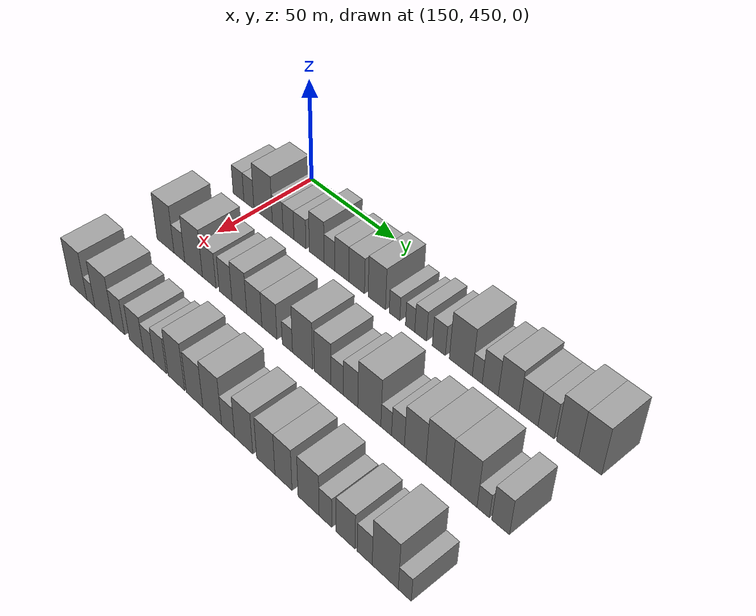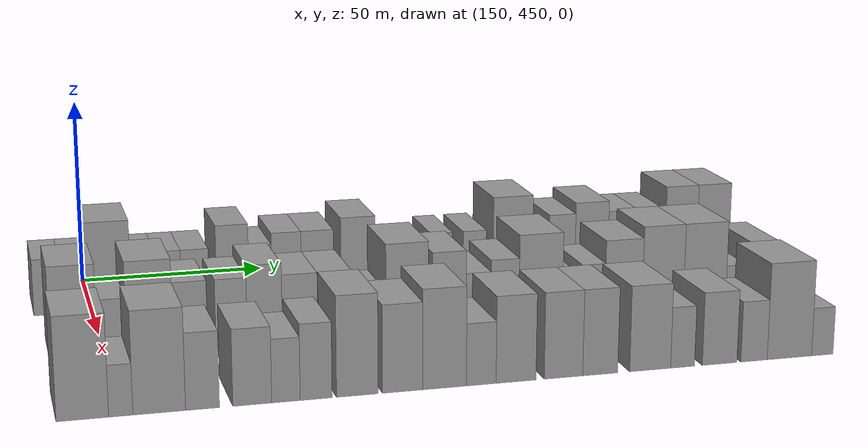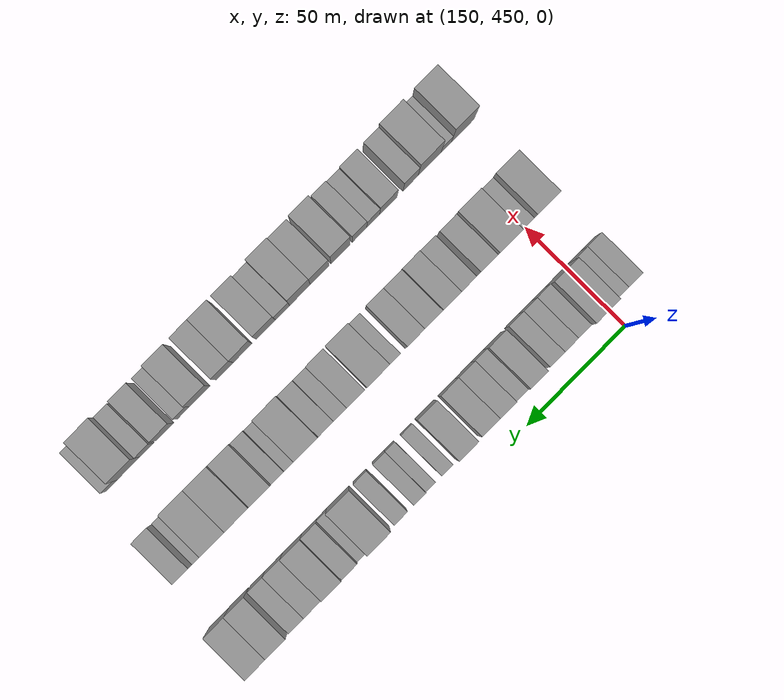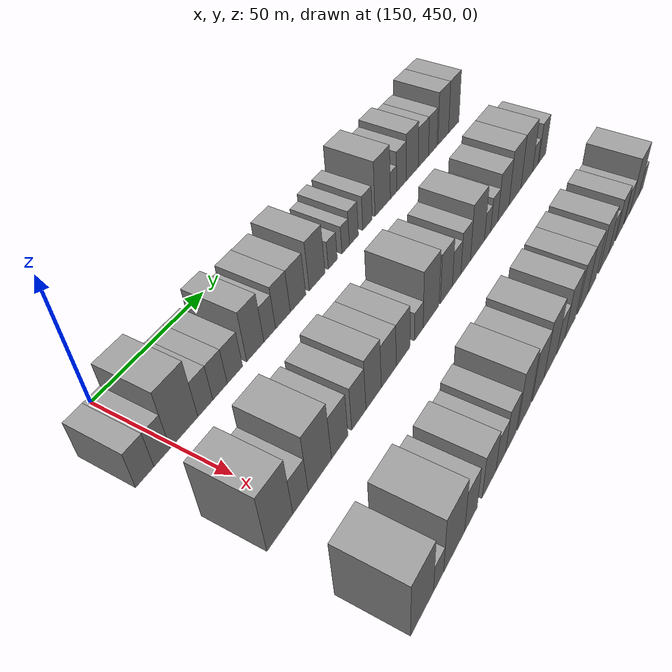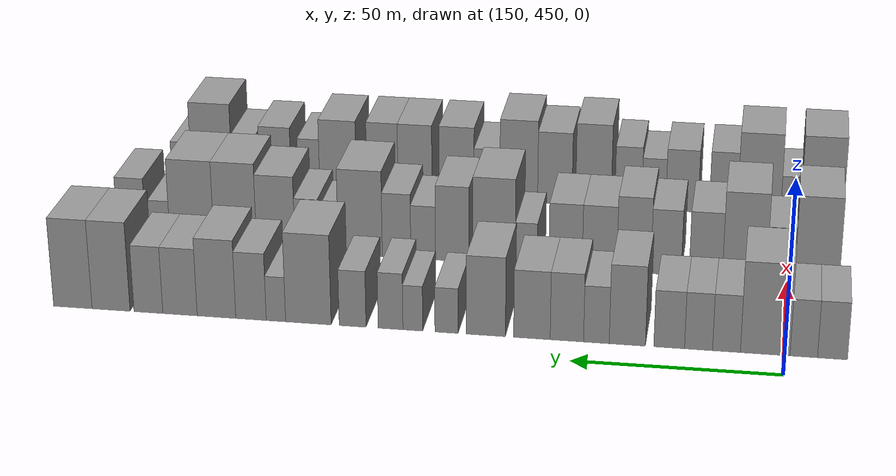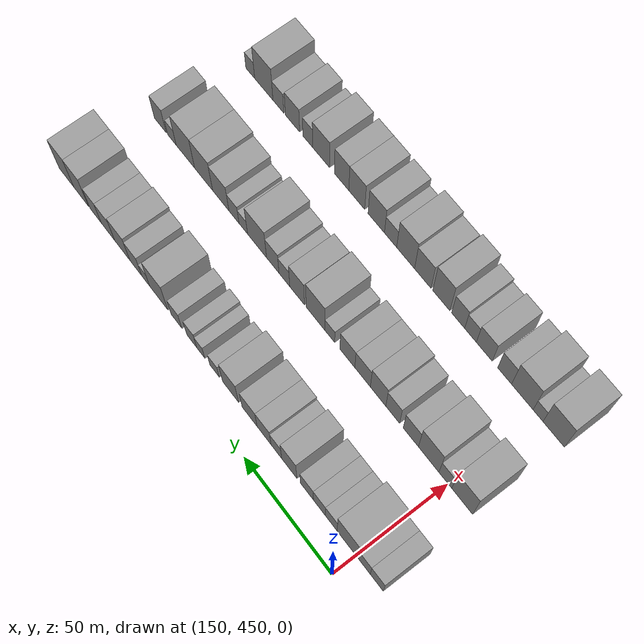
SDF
<sdf version="1.6">
 <world name="default">
  <model name="building_526">
   <static>1</static>
   <pose>170.0000 438.6558 0 0.000000 0.000000 0.000000</pose>
   <link name="link">
    <pose>0 0 7.50 0 0 0</pose>
    <collision name="collision"><geometry><box><size>20.0000 7.0231 15.0000</size></box></geometry></collision>
    <visual name="visual">
     <cast_shadows>0</cast_shadows>
     <geometry><box><size>20.0000 7.0231 15.0000</size></box></geometry>
     <material>
      <script>
       <uri>model://grey_wall/materials/scripts</uri>
       <uri>model://grey_wall/materials/textures</uri>
       <name>vrc/grey_wall</name>
      </script>
     </material>
    </visual>
   </link>
  </model>
  <model name="building_527">
   <static>1</static>
   <pose>170.0000 445.3950 0 0.000000 0.000000 0.000000</pose>
   <link name="link">
    <pose>0 0 7.50 0 0 0</pose>
    <collision name="collision"><geometry><box><size>20.0000 6.4554 15.0000</size></box></geometry></collision>
    <visual name="visual">
     <cast_shadows>0</cast_shadows>
     <geometry><box><size>20.0000 6.4554 15.0000</size></box></geometry>
     <material>
      <script>
       <uri>model://grey_wall/materials/scripts</uri>
       <uri>model://grey_wall/materials/textures</uri>
       <name>vrc/grey_wall</name>
      </script>
     </material>
    </visual>
   </link>
  </model>
  <model name="building_528">
   <static>1</static>
   <pose>170.0000 454.4798 0 0.000000 0.000000 0.000000</pose>
   <link name="link">
    <pose>0 0 12.00 0 0 0</pose>
    <collision name="collision"><geometry><box><size>20.0000 11.7142 24.0000</size></box></geometry></collision>
    <visual name="visual">
     <cast_shadows>0</cast_shadows>
     <geometry><box><size>20.0000 11.7142 24.0000</size></box></geometry>
     <material>
      <script>
       <uri>model://grey_wall/materials/scripts</uri>
       <uri>model://grey_wall/materials/textures</uri>
       <name>vrc/grey_wall</name>
      </script>
     </material>
    </visual>
   </link>
  </model>
  <model name="building_529">
   <static>1</static>
   <pose>170.0000 463.6392 0 0.000000 0.000000 0.000000</pose>
   <link name="link">
    <pose>0 0 7.50 0 0 0</pose>
    <collision name="collision"><geometry><box><size>20.0000 6.6045 15.0000</size></box></geometry></collision>
    <visual name="visual">
     <cast_shadows>0</cast_shadows>
     <geometry><box><size>20.0000 6.6045 15.0000</size></box></geometry>
     <material>
      <script>
       <uri>model://grey_wall/materials/scripts</uri>
       <uri>model://grey_wall/materials/textures</uri>
       <name>vrc/grey_wall</name>
      </script>
     </material>
    </visual>
   </link>
  </model>
  <model name="building_530">
   <static>1</static>
   <pose>170.0000 470.2667 0 0.000000 0.000000 0.000000</pose>
   <link name="link">
    <pose>0 0 7.50 0 0 0</pose>
    <collision name="collision"><geometry><box><size>20.0000 6.6507 15.0000</size></box></geometry></collision>
    <visual name="visual">
     <cast_shadows>0</cast_shadows>
     <geometry><box><size>20.0000 6.6507 15.0000</size></box></geometry>
     <material>
      <script>
       <uri>model://grey_wall/materials/scripts</uri>
       <uri>model://grey_wall/materials/textures</uri>
       <name>vrc/grey_wall</name>
      </script>
     </material>
    </visual>
   </link>
  </model>
  <model name="building_531">
   <static>1</static>
   <pose>170.0000 477.2610 0 0.000000 0.000000 0.000000</pose>
   <link name="link">
    <pose>0 0 7.50 0 0 0</pose>
    <collision name="collision"><geometry><box><size>20.0000 7.3378 15.0000</size></box></geometry></collision>
    <visual name="visual">
     <cast_shadows>0</cast_shadows>
     <geometry><box><size>20.0000 7.3378 15.0000</size></box></geometry>
     <material>
      <script>
       <uri>model://grey_wall/materials/scripts</uri>
       <uri>model://grey_wall/materials/textures</uri>
       <name>vrc/grey_wall</name>
      </script>
     </material>
    </visual>
   </link>
  </model>
  <model name="building_532">
   <static>1</static>
   <pose>170.0000 487.2739 0 0.000000 0.000000 0.000000</pose>
   <link name="link">
    <pose>0 0 10.50 0 0 0</pose>
    <collision name="collision"><geometry><box><size>20.0000 8.6882 21.0000</size></box></geometry></collision>
    <visual name="visual">
     <cast_shadows>0</cast_shadows>
     <geometry><box><size>20.0000 8.6882 21.0000</size></box></geometry>
     <material>
      <script>
       <uri>model://grey_wall/materials/scripts</uri>
       <uri>model://grey_wall/materials/textures</uri>
       <name>vrc/grey_wall</name>
      </script>
     </material>
    </visual>
   </link>
  </model>
  <model name="building_533">
   <static>1</static>
   <pose>170.0000 494.7062 0 0.000000 0.000000 0.000000</pose>
   <link name="link">
    <pose>0 0 7.50 0 0 0</pose>
    <collision name="collision"><geometry><box><size>20.0000 6.1763 15.0000</size></box></geometry></collision>
    <visual name="visual">
     <cast_shadows>0</cast_shadows>
     <geometry><box><size>20.0000 6.1763 15.0000</size></box></geometry>
     <material>
      <script>
       <uri>model://grey_wall/materials/scripts</uri>
       <uri>model://grey_wall/materials/textures</uri>
       <name>vrc/grey_wall</name>
      </script>
     </material>
    </visual>
   </link>
  </model>
  <model name="building_534">
   <static>1</static>
   <pose>170.0000 501.8269 0 0.000000 0.000000 0.000000</pose>
   <link name="link">
    <pose>0 0 9.00 0 0 0</pose>
    <collision name="collision"><geometry><box><size>20.0000 8.0651 18.0000</size></box></geometry></collision>
    <visual name="visual">
     <cast_shadows>0</cast_shadows>
     <geometry><box><size>20.0000 8.0651 18.0000</size></box></geometry>
     <material>
      <script>
       <uri>model://grey_wall/materials/scripts</uri>
       <uri>model://grey_wall/materials/textures</uri>
       <name>vrc/grey_wall</name>
      </script>
     </material>
    </visual>
   </link>
  </model>
  <model name="building_535">
   <static>1</static>
   <pose>170.0000 510.2862 0 0.000000 0.000000 0.000000</pose>
   <link name="link">
    <pose>0 0 9.00 0 0 0</pose>
    <collision name="collision"><geometry><box><size>20.0000 8.8534 18.0000</size></box></geometry></collision>
    <visual name="visual">
     <cast_shadows>0</cast_shadows>
     <geometry><box><size>20.0000 8.8534 18.0000</size></box></geometry>
     <material>
      <script>
       <uri>model://grey_wall/materials/scripts</uri>
       <uri>model://grey_wall/materials/textures</uri>
       <name>vrc/grey_wall</name>
      </script>
     </material>
    </visual>
   </link>
  </model>
  <model name="building_536">
   <static>1</static>
   <pose>170.0000 521.4826 0 0.000000 0.000000 0.000000</pose>
   <link name="link">
    <pose>0 0 10.50 0 0 0</pose>
    <collision name="collision"><geometry><box><size>20.0000 9.5393 21.0000</size></box></geometry></collision>
    <visual name="visual">
     <cast_shadows>0</cast_shadows>
     <geometry><box><size>20.0000 9.5393 21.0000</size></box></geometry>
     <material>
      <script>
       <uri>model://grey_wall/materials/scripts</uri>
       <uri>model://grey_wall/materials/textures</uri>
       <name>vrc/grey_wall</name>
      </script>
     </material>
    </visual>
   </link>
  </model>
  <model name="building_537">
   <static>1</static>
   <pose>170.0000 531.0983 0 0.000000 0.000000 0.000000</pose>
   <link name="link">
    <pose>0 0 6.00 0 0 0</pose>
    <collision name="collision"><geometry><box><size>20.0000 5.6921 12.0000</size></box></geometry></collision>
    <visual name="visual">
     <cast_shadows>0</cast_shadows>
     <geometry><box><size>20.0000 5.6921 12.0000</size></box></geometry>
     <material>
      <script>
       <uri>model://grey_wall/materials/scripts</uri>
       <uri>model://grey_wall/materials/textures</uri>
       <name>vrc/grey_wall</name>
      </script>
     </material>
    </visual>
   </link>
  </model>
  <model name="building_538">
   <static>1</static>
   <pose>170.0000 539.3875 0 0.000000 0.000000 0.000000</pose>
   <link name="link">
    <pose>0 0 6.00 0 0 0</pose>
    <collision name="collision"><geometry><box><size>20.0000 4.8865 12.0000</size></box></geometry></collision>
    <visual name="visual">
     <cast_shadows>0</cast_shadows>
     <geometry><box><size>20.0000 4.8865 12.0000</size></box></geometry>
     <material>
      <script>
       <uri>model://grey_wall/materials/scripts</uri>
       <uri>model://grey_wall/materials/textures</uri>
       <name>vrc/grey_wall</name>
      </script>
     </material>
    </visual>
   </link>
  </model>
  <model name="building_539">
   <static>1</static>
   <pose>170.0000 544.8782 0 0.000000 0.000000 0.000000</pose>
   <link name="link">
    <pose>0 0 7.50 0 0 0</pose>
    <collision name="collision"><geometry><box><size>20.0000 6.0950 15.0000</size></box></geometry></collision>
    <visual name="visual">
     <cast_shadows>0</cast_shadows>
     <geometry><box><size>20.0000 6.0950 15.0000</size></box></geometry>
     <material>
      <script>
       <uri>model://grey_wall/materials/scripts</uri>
       <uri>model://grey_wall/materials/textures</uri>
       <name>vrc/grey_wall</name>
      </script>
     </material>
    </visual>
   </link>
  </model>
  <model name="building_540">
   <static>1</static>
   <pose>170.0000 554.2513 0 0.000000 0.000000 0.000000</pose>
   <link name="link">
    <pose>0 0 7.50 0 0 0</pose>
    <collision name="collision"><geometry><box><size>20.0000 6.6512 15.0000</size></box></geometry></collision>
    <visual name="visual">
     <cast_shadows>0</cast_shadows>
     <geometry><box><size>20.0000 6.6512 15.0000</size></box></geometry>
     <material>
      <script>
       <uri>model://grey_wall/materials/scripts</uri>
       <uri>model://grey_wall/materials/textures</uri>
       <name>vrc/grey_wall</name>
      </script>
     </material>
    </visual>
   </link>
  </model>
  <model name="building_541">
   <static>1</static>
   <pose>170.0000 565.2590 0 0.000000 0.000000 0.000000</pose>
   <link name="link">
    <pose>0 0 12.00 0 0 0</pose>
    <collision name="collision"><geometry><box><size>20.0000 11.3643 24.0000</size></box></geometry></collision>
    <visual name="visual">
     <cast_shadows>0</cast_shadows>
     <geometry><box><size>20.0000 11.3643 24.0000</size></box></geometry>
     <material>
      <script>
       <uri>model://grey_wall/materials/scripts</uri>
       <uri>model://grey_wall/materials/textures</uri>
       <name>vrc/grey_wall</name>
      </script>
     </material>
    </visual>
   </link>
  </model>
  <model name="building_542">
   <static>1</static>
   <pose>170.0000 573.3591 0 0.000000 0.000000 0.000000</pose>
   <link name="link">
    <pose>0 0 6.00 0 0 0</pose>
    <collision name="collision"><geometry><box><size>20.0000 4.8358 12.0000</size></box></geometry></collision>
    <visual name="visual">
     <cast_shadows>0</cast_shadows>
     <geometry><box><size>20.0000 4.8358 12.0000</size></box></geometry>
     <material>
      <script>
       <uri>model://grey_wall/materials/scripts</uri>
       <uri>model://grey_wall/materials/textures</uri>
       <name>vrc/grey_wall</name>
      </script>
     </material>
    </visual>
   </link>
  </model>
  <model name="building_543">
   <static>1</static>
   <pose>170.0000 579.6017 0 0.000000 0.000000 0.000000</pose>
   <link name="link">
    <pose>0 0 9.00 0 0 0</pose>
    <collision name="collision"><geometry><box><size>20.0000 7.6495 18.0000</size></box></geometry></collision>
    <visual name="visual">
     <cast_shadows>0</cast_shadows>
     <geometry><box><size>20.0000 7.6495 18.0000</size></box></geometry>
     <material>
      <script>
       <uri>model://grey_wall/materials/scripts</uri>
       <uri>model://grey_wall/materials/textures</uri>
       <name>vrc/grey_wall</name>
      </script>
     </material>
    </visual>
   </link>
  </model>
  <model name="building_544">
   <static>1</static>
   <pose>170.0000 588.2946 0 0.000000 0.000000 0.000000</pose>
   <link name="link">
    <pose>0 0 10.50 0 0 0</pose>
    <collision name="collision"><geometry><box><size>20.0000 9.7362 21.0000</size></box></geometry></collision>
    <visual name="visual">
     <cast_shadows>0</cast_shadows>
     <geometry><box><size>20.0000 9.7362 21.0000</size></box></geometry>
     <material>
      <script>
       <uri>model://grey_wall/materials/scripts</uri>
       <uri>model://grey_wall/materials/textures</uri>
       <name>vrc/grey_wall</name>
      </script>
     </material>
    </visual>
   </link>
  </model>
  <model name="building_545">
   <static>1</static>
   <pose>170.0000 597.5183 0 0.000000 0.000000 0.000000</pose>
   <link name="link">
    <pose>0 0 9.00 0 0 0</pose>
    <collision name="collision"><geometry><box><size>20.0000 8.7113 18.0000</size></box></geometry></collision>
    <visual name="visual">
     <cast_shadows>0</cast_shadows>
     <geometry><box><size>20.0000 8.7113 18.0000</size></box></geometry>
     <material>
      <script>
       <uri>model://grey_wall/materials/scripts</uri>
       <uri>model://grey_wall/materials/textures</uri>
       <name>vrc/grey_wall</name>
      </script>
     </material>
    </visual>
   </link>
  </model>
  <model name="building_546">
   <static>1</static>
   <pose>170.0000 605.5359 0 0.000000 0.000000 0.000000</pose>
   <link name="link">
    <pose>0 0 9.00 0 0 0</pose>
    <collision name="collision"><geometry><box><size>20.0000 7.3240 18.0000</size></box></geometry></collision>
    <visual name="visual">
     <cast_shadows>0</cast_shadows>
     <geometry><box><size>20.0000 7.3240 18.0000</size></box></geometry>
     <material>
      <script>
       <uri>model://grey_wall/materials/scripts</uri>
       <uri>model://grey_wall/materials/textures</uri>
       <name>vrc/grey_wall</name>
      </script>
     </material>
    </visual>
   </link>
  </model>
  <model name="building_547">
   <static>1</static>
   <pose>170.0000 615.0454 0 0.000000 0.000000 0.000000</pose>
   <link name="link">
    <pose>0 0 12.00 0 0 0</pose>
    <collision name="collision"><geometry><box><size>20.0000 9.6948 24.0000</size></box></geometry></collision>
    <visual name="visual">
     <cast_shadows>0</cast_shadows>
     <geometry><box><size>20.0000 9.6948 24.0000</size></box></geometry>
     <material>
      <script>
       <uri>model://grey_wall/materials/scripts</uri>
       <uri>model://grey_wall/materials/textures</uri>
       <name>vrc/grey_wall</name>
      </script>
     </material>
    </visual>
   </link>
  </model>
  <model name="building_548">
   <static>1</static>
   <pose>170.0000 624.8203 0 0.000000 0.000000 0.000000</pose>
   <link name="link">
    <pose>0 0 12.00 0 0 0</pose>
    <collision name="collision"><geometry><box><size>20.0000 9.8550 24.0000</size></box></geometry></collision>
    <visual name="visual">
     <cast_shadows>0</cast_shadows>
     <geometry><box><size>20.0000 9.8550 24.0000</size></box></geometry>
     <material>
      <script>
       <uri>model://grey_wall/materials/scripts</uri>
       <uri>model://grey_wall/materials/textures</uri>
       <name>vrc/grey_wall</name>
      </script>
     </material>
    </visual>
   </link>
  </model>
  <model name="building_670">
   <static>1</static>
   <pose>210.0000 442.4540 0 0.000000 0.000000 0.000000</pose>
   <link name="link">
    <pose>0 0 12.00 0 0 0</pose>
    <collision name="collision"><geometry><box><size>20.0000 11.2162 24.0000</size></box></geometry></collision>
    <visual name="visual">
     <cast_shadows>0</cast_shadows>
     <geometry><box><size>20.0000 11.2162 24.0000</size></box></geometry>
     <material>
      <script>
       <uri>model://grey_wall/materials/scripts</uri>
       <uri>model://grey_wall/materials/textures</uri>
       <name>vrc/grey_wall</name>
      </script>
     </material>
    </visual>
   </link>
  </model>
  <model name="building_671">
   <static>1</static>
   <pose>210.0000 451.5662 0 0.000000 0.000000 0.000000</pose>
   <link name="link">
    <pose>0 0 7.50 0 0 0</pose>
    <collision name="collision"><geometry><box><size>20.0000 7.0082 15.0000</size></box></geometry></collision>
    <visual name="visual">
     <cast_shadows>0</cast_shadows>
     <geometry><box><size>20.0000 7.0082 15.0000</size></box></geometry>
     <material>
      <script>
       <uri>model://grey_wall/materials/scripts</uri>
       <uri>model://grey_wall/materials/textures</uri>
       <name>vrc/grey_wall</name>
      </script>
     </material>
    </visual>
   </link>
  </model>
  <model name="building_672">
   <static>1</static>
   <pose>210.0000 460.6718 0 0.000000 0.000000 0.000000</pose>
   <link name="link">
    <pose>0 0 12.00 0 0 0</pose>
    <collision name="collision"><geometry><box><size>20.0000 11.2029 24.0000</size></box></geometry></collision>
    <visual name="visual">
     <cast_shadows>0</cast_shadows>
     <geometry><box><size>20.0000 11.2029 24.0000</size></box></geometry>
     <material>
      <script>
       <uri>model://grey_wall/materials/scripts</uri>
       <uri>model://grey_wall/materials/textures</uri>
       <name>vrc/grey_wall</name>
      </script>
     </material>
    </visual>
   </link>
  </model>
  <model name="building_673">
   <static>1</static>
   <pose>210.0000 470.4964 0 0.000000 0.000000 0.000000</pose>
   <link name="link">
    <pose>0 0 9.00 0 0 0</pose>
    <collision name="collision"><geometry><box><size>20.0000 8.4462 18.0000</size></box></geometry></collision>
    <visual name="visual">
     <cast_shadows>0</cast_shadows>
     <geometry><box><size>20.0000 8.4462 18.0000</size></box></geometry>
     <material>
      <script>
       <uri>model://grey_wall/materials/scripts</uri>
       <uri>model://grey_wall/materials/textures</uri>
       <name>vrc/grey_wall</name>
      </script>
     </material>
    </visual>
   </link>
  </model>
  <model name="building_674">
   <static>1</static>
   <pose>210.0000 480.5893 0 0.000000 0.000000 0.000000</pose>
   <link name="link">
    <pose>0 0 9.00 0 0 0</pose>
    <collision name="collision"><geometry><box><size>20.0000 7.7396 18.0000</size></box></geometry></collision>
    <visual name="visual">
     <cast_shadows>0</cast_shadows>
     <geometry><box><size>20.0000 7.7396 18.0000</size></box></geometry>
     <material>
      <script>
       <uri>model://grey_wall/materials/scripts</uri>
       <uri>model://grey_wall/materials/textures</uri>
       <name>vrc/grey_wall</name>
      </script>
     </material>
    </visual>
   </link>
  </model>
  <model name="building_675">
   <static>1</static>
   <pose>210.0000 488.8304 0 0.000000 0.000000 0.000000</pose>
   <link name="link">
    <pose>0 0 10.50 0 0 0</pose>
    <collision name="collision"><geometry><box><size>20.0000 8.7427 21.0000</size></box></geometry></collision>
    <visual name="visual">
     <cast_shadows>0</cast_shadows>
     <geometry><box><size>20.0000 8.7427 21.0000</size></box></geometry>
     <material>
      <script>
       <uri>model://grey_wall/materials/scripts</uri>
       <uri>model://grey_wall/materials/textures</uri>
       <name>vrc/grey_wall</name>
      </script>
     </material>
    </visual>
   </link>
  </model>
  <model name="building_676">
   <static>1</static>
   <pose>210.0000 497.6468 0 0.000000 0.000000 0.000000</pose>
   <link name="link">
    <pose>0 0 9.00 0 0 0</pose>
    <collision name="collision"><geometry><box><size>20.0000 8.8901 18.0000</size></box></geometry></collision>
    <visual name="visual">
     <cast_shadows>0</cast_shadows>
     <geometry><box><size>20.0000 8.8901 18.0000</size></box></geometry>
     <material>
      <script>
       <uri>model://grey_wall/materials/scripts</uri>
       <uri>model://grey_wall/materials/textures</uri>
       <name>vrc/grey_wall</name>
      </script>
     </material>
    </visual>
   </link>
  </model>
  <model name="building_677">
   <static>1</static>
   <pose>210.0000 506.4070 0 0.000000 0.000000 0.000000</pose>
   <link name="link">
    <pose>0 0 9.00 0 0 0</pose>
    <collision name="collision"><geometry><box><size>20.0000 8.6303 18.0000</size></box></geometry></collision>
    <visual name="visual">
     <cast_shadows>0</cast_shadows>
     <geometry><box><size>20.0000 8.6303 18.0000</size></box></geometry>
     <material>
      <script>
       <uri>model://grey_wall/materials/scripts</uri>
       <uri>model://grey_wall/materials/textures</uri>
       <name>vrc/grey_wall</name>
      </script>
     </material>
    </visual>
   </link>
  </model>
  <model name="building_678">
   <static>1</static>
   <pose>210.0000 516.5799 0 0.000000 0.000000 0.000000</pose>
   <link name="link">
    <pose>0 0 6.00 0 0 0</pose>
    <collision name="collision"><geometry><box><size>20.0000 5.7154 12.0000</size></box></geometry></collision>
    <visual name="visual">
     <cast_shadows>0</cast_shadows>
     <geometry><box><size>20.0000 5.7154 12.0000</size></box></geometry>
     <material>
      <script>
       <uri>model://grey_wall/materials/scripts</uri>
       <uri>model://grey_wall/materials/textures</uri>
       <name>vrc/grey_wall</name>
      </script>
     </material>
    </visual>
   </link>
  </model>
  <model name="building_679">
   <static>1</static>
   <pose>210.0000 524.9511 0 0.000000 0.000000 0.000000</pose>
   <link name="link">
    <pose>0 0 12.00 0 0 0</pose>
    <collision name="collision"><geometry><box><size>20.0000 11.0271 24.0000</size></box></geometry></collision>
    <visual name="visual">
     <cast_shadows>0</cast_shadows>
     <geometry><box><size>20.0000 11.0271 24.0000</size></box></geometry>
     <material>
      <script>
       <uri>model://grey_wall/materials/scripts</uri>
       <uri>model://grey_wall/materials/textures</uri>
       <name>vrc/grey_wall</name>
      </script>
     </material>
    </visual>
   </link>
  </model>
  <model name="building_680">
   <static>1</static>
   <pose>210.0000 535.8602 0 0.000000 0.000000 0.000000</pose>
   <link name="link">
    <pose>0 0 10.50 0 0 0</pose>
    <collision name="collision"><geometry><box><size>20.0000 8.7910 21.0000</size></box></geometry></collision>
    <visual name="visual">
     <cast_shadows>0</cast_shadows>
     <geometry><box><size>20.0000 8.7910 21.0000</size></box></geometry>
     <material>
      <script>
       <uri>model://grey_wall/materials/scripts</uri>
       <uri>model://grey_wall/materials/textures</uri>
       <name>vrc/grey_wall</name>
      </script>
     </material>
    </visual>
   </link>
  </model>
  <model name="building_681">
   <static>1</static>
   <pose>210.0000 543.5018 0 0.000000 0.000000 0.000000</pose>
   <link name="link">
    <pose>0 0 7.50 0 0 0</pose>
    <collision name="collision"><geometry><box><size>20.0000 6.4921 15.0000</size></box></geometry></collision>
    <visual name="visual">
     <cast_shadows>0</cast_shadows>
     <geometry><box><size>20.0000 6.4921 15.0000</size></box></geometry>
     <material>
      <script>
       <uri>model://grey_wall/materials/scripts</uri>
       <uri>model://grey_wall/materials/textures</uri>
       <name>vrc/grey_wall</name>
      </script>
     </material>
    </visual>
   </link>
  </model>
  <model name="building_682">
   <static>1</static>
   <pose>210.0000 550.4992 0 0.000000 0.000000 0.000000</pose>
   <link name="link">
    <pose>0 0 9.00 0 0 0</pose>
    <collision name="collision"><geometry><box><size>20.0000 7.5028 18.0000</size></box></geometry></collision>
    <visual name="visual">
     <cast_shadows>0</cast_shadows>
     <geometry><box><size>20.0000 7.5028 18.0000</size></box></geometry>
     <material>
      <script>
       <uri>model://grey_wall/materials/scripts</uri>
       <uri>model://grey_wall/materials/textures</uri>
       <name>vrc/grey_wall</name>
      </script>
     </material>
    </visual>
   </link>
  </model>
  <model name="building_683">
   <static>1</static>
   <pose>210.0000 560.0758 0 0.000000 0.000000 0.000000</pose>
   <link name="link">
    <pose>0 0 12.00 0 0 0</pose>
    <collision name="collision"><geometry><box><size>20.0000 11.6503 24.0000</size></box></geometry></collision>
    <visual name="visual">
     <cast_shadows>0</cast_shadows>
     <geometry><box><size>20.0000 11.6503 24.0000</size></box></geometry>
     <material>
      <script>
       <uri>model://grey_wall/materials/scripts</uri>
       <uri>model://grey_wall/materials/textures</uri>
       <name>vrc/grey_wall</name>
      </script>
     </material>
    </visual>
   </link>
  </model>
  <model name="building_684">
   <static>1</static>
   <pose>210.0000 568.5385 0 0.000000 0.000000 0.000000</pose>
   <link name="link">
    <pose>0 0 6.00 0 0 0</pose>
    <collision name="collision"><geometry><box><size>20.0000 5.2750 12.0000</size></box></geometry></collision>
    <visual name="visual">
     <cast_shadows>0</cast_shadows>
     <geometry><box><size>20.0000 5.2750 12.0000</size></box></geometry>
     <material>
      <script>
       <uri>model://grey_wall/materials/scripts</uri>
       <uri>model://grey_wall/materials/textures</uri>
       <name>vrc/grey_wall</name>
      </script>
     </material>
    </visual>
   </link>
  </model>
  <model name="building_685">
   <static>1</static>
   <pose>210.0000 574.3078 0 0.000000 0.000000 0.000000</pose>
   <link name="link">
    <pose>0 0 7.50 0 0 0</pose>
    <collision name="collision"><geometry><box><size>20.0000 6.2637 15.0000</size></box></geometry></collision>
    <visual name="visual">
     <cast_shadows>0</cast_shadows>
     <geometry><box><size>20.0000 6.2637 15.0000</size></box></geometry>
     <material>
      <script>
       <uri>model://grey_wall/materials/scripts</uri>
       <uri>model://grey_wall/materials/textures</uri>
       <name>vrc/grey_wall</name>
      </script>
     </material>
    </visual>
   </link>
  </model>
  <model name="building_686">
   <static>1</static>
   <pose>210.0000 582.5694 0 0.000000 0.000000 0.000000</pose>
   <link name="link">
    <pose>0 0 10.50 0 0 0</pose>
    <collision name="collision"><geometry><box><size>20.0000 10.2594 21.0000</size></box></geometry></collision>
    <visual name="visual">
     <cast_shadows>0</cast_shadows>
     <geometry><box><size>20.0000 10.2594 21.0000</size></box></geometry>
     <material>
      <script>
       <uri>model://grey_wall/materials/scripts</uri>
       <uri>model://grey_wall/materials/textures</uri>
       <name>vrc/grey_wall</name>
      </script>
     </material>
    </visual>
   </link>
  </model>
  <model name="building_687">
   <static>1</static>
   <pose>210.0000 593.4216 0 0.000000 0.000000 0.000000</pose>
   <link name="link">
    <pose>0 0 12.00 0 0 0</pose>
    <collision name="collision"><geometry><box><size>20.0000 11.4450 24.0000</size></box></geometry></collision>
    <visual name="visual">
     <cast_shadows>0</cast_shadows>
     <geometry><box><size>20.0000 11.4450 24.0000</size></box></geometry>
     <material>
      <script>
       <uri>model://grey_wall/materials/scripts</uri>
       <uri>model://grey_wall/materials/textures</uri>
       <name>vrc/grey_wall</name>
      </script>
     </material>
    </visual>
   </link>
  </model>
  <model name="building_688">
   <static>1</static>
   <pose>210.0000 605.0893 0 0.000000 0.000000 0.000000</pose>
   <link name="link">
    <pose>0 0 12.00 0 0 0</pose>
    <collision name="collision"><geometry><box><size>20.0000 11.8905 24.0000</size></box></geometry></collision>
    <visual name="visual">
     <cast_shadows>0</cast_shadows>
     <geometry><box><size>20.0000 11.8905 24.0000</size></box></geometry>
     <material>
      <script>
       <uri>model://grey_wall/materials/scripts</uri>
       <uri>model://grey_wall/materials/textures</uri>
       <name>vrc/grey_wall</name>
      </script>
     </material>
    </visual>
   </link>
  </model>
  <model name="building_689">
   <static>1</static>
   <pose>210.0000 613.7754 0 0.000000 0.000000 0.000000</pose>
   <link name="link">
    <pose>0 0 6.00 0 0 0</pose>
    <collision name="collision"><geometry><box><size>20.0000 5.4817 12.0000</size></box></geometry></collision>
    <visual name="visual">
     <cast_shadows>0</cast_shadows>
     <geometry><box><size>20.0000 5.4817 12.0000</size></box></geometry>
     <material>
      <script>
       <uri>model://grey_wall/materials/scripts</uri>
       <uri>model://grey_wall/materials/textures</uri>
       <name>vrc/grey_wall</name>
      </script>
     </material>
    </visual>
   </link>
  </model>
  <model name="building_690">
   <static>1</static>
   <pose>210.0000 621.3592 0 0.000000 0.000000 0.000000</pose>
   <link name="link">
    <pose>0 0 9.00 0 0 0</pose>
    <collision name="collision"><geometry><box><size>20.0000 7.6859 18.0000</size></box></geometry></collision>
    <visual name="visual">
     <cast_shadows>0</cast_shadows>
     <geometry><box><size>20.0000 7.6859 18.0000</size></box></geometry>
     <material>
      <script>
       <uri>model://grey_wall/materials/scripts</uri>
       <uri>model://grey_wall/materials/textures</uri>
       <name>vrc/grey_wall</name>
      </script>
     </material>
    </visual>
   </link>
  </model>
  <model name="building_805">
   <static>1</static>
   <pose>250.0000 441.2443 0 0.000000 0.000000 0.000000</pose>
   <link name="link">
    <pose>0 0 12.00 0 0 0</pose>
    <collision name="collision"><geometry><box><size>20.0000 11.3872 24.0000</size></box></geometry></collision>
    <visual name="visual">
     <cast_shadows>0</cast_shadows>
     <geometry><box><size>20.0000 11.3872 24.0000</size></box></geometry>
     <material>
      <script>
       <uri>model://grey_wall/materials/scripts</uri>
       <uri>model://grey_wall/materials/textures</uri>
       <name>vrc/grey_wall</name>
      </script>
     </material>
    </visual>
   </link>
  </model>
  <model name="building_806">
   <static>1</static>
   <pose>250.0000 449.6000 0 0.000000 0.000000 0.000000</pose>
   <link name="link">
    <pose>0 0 6.00 0 0 0</pose>
    <collision name="collision"><geometry><box><size>20.0000 5.3243 12.0000</size></box></geometry></collision>
    <visual name="visual">
     <cast_shadows>0</cast_shadows>
     <geometry><box><size>20.0000 5.3243 12.0000</size></box></geometry>
     <material>
      <script>
       <uri>model://grey_wall/materials/scripts</uri>
       <uri>model://grey_wall/materials/textures</uri>
       <name>vrc/grey_wall</name>
      </script>
     </material>
    </visual>
   </link>
  </model>
  <model name="building_807">
   <static>1</static>
   <pose>250.0000 458.0847 0 0.000000 0.000000 0.000000</pose>
   <link name="link">
    <pose>0 0 12.00 0 0 0</pose>
    <collision name="collision"><geometry><box><size>20.0000 11.6451 24.0000</size></box></geometry></collision>
    <visual name="visual">
     <cast_shadows>0</cast_shadows>
     <geometry><box><size>20.0000 11.6451 24.0000</size></box></geometry>
     <material>
      <script>
       <uri>model://grey_wall/materials/scripts</uri>
       <uri>model://grey_wall/materials/textures</uri>
       <name>vrc/grey_wall</name>
      </script>
     </material>
    </visual>
   </link>
  </model>
  <model name="building_808">
   <static>1</static>
   <pose>250.0000 467.6912 0 0.000000 0.000000 0.000000</pose>
   <link name="link">
    <pose>0 0 9.00 0 0 0</pose>
    <collision name="collision"><geometry><box><size>20.0000 7.5679 18.0000</size></box></geometry></collision>
    <visual name="visual">
     <cast_shadows>0</cast_shadows>
     <geometry><box><size>20.0000 7.5679 18.0000</size></box></geometry>
     <material>
      <script>
       <uri>model://grey_wall/materials/scripts</uri>
       <uri>model://grey_wall/materials/textures</uri>
       <name>vrc/grey_wall</name>
      </script>
     </material>
    </visual>
   </link>
  </model>
  <model name="building_809">
   <static>1</static>
   <pose>250.0000 478.8758 0 0.000000 0.000000 0.000000</pose>
   <link name="link">
    <pose>0 0 9.00 0 0 0</pose>
    <collision name="collision"><geometry><box><size>20.0000 8.8011 18.0000</size></box></geometry></collision>
    <visual name="visual">
     <cast_shadows>0</cast_shadows>
     <geometry><box><size>20.0000 8.8011 18.0000</size></box></geometry>
     <material>
      <script>
       <uri>model://grey_wall/materials/scripts</uri>
       <uri>model://grey_wall/materials/textures</uri>
       <name>vrc/grey_wall</name>
      </script>
     </material>
    </visual>
   </link>
  </model>
  <model name="building_810">
   <static>1</static>
   <pose>250.0000 486.5454 0 0.000000 0.000000 0.000000</pose>
   <link name="link">
    <pose>0 0 7.50 0 0 0</pose>
    <collision name="collision"><geometry><box><size>20.0000 6.5382 15.0000</size></box></geometry></collision>
    <visual name="visual">
     <cast_shadows>0</cast_shadows>
     <geometry><box><size>20.0000 6.5382 15.0000</size></box></geometry>
     <material>
      <script>
       <uri>model://grey_wall/materials/scripts</uri>
       <uri>model://grey_wall/materials/textures</uri>
       <name>vrc/grey_wall</name>
      </script>
     </material>
    </visual>
   </link>
  </model>
  <model name="building_811">
   <static>1</static>
   <pose>250.0000 493.4842 0 0.000000 0.000000 0.000000</pose>
   <link name="link">
    <pose>0 0 9.00 0 0 0</pose>
    <collision name="collision"><geometry><box><size>20.0000 7.3394 18.0000</size></box></geometry></collision>
    <visual name="visual">
     <cast_shadows>0</cast_shadows>
     <geometry><box><size>20.0000 7.3394 18.0000</size></box></geometry>
     <material>
      <script>
       <uri>model://grey_wall/materials/scripts</uri>
       <uri>model://grey_wall/materials/textures</uri>
       <name>vrc/grey_wall</name>
      </script>
     </material>
    </visual>
   </link>
  </model>
  <model name="building_812">
   <static>1</static>
   <pose>250.0000 503.0191 0 0.000000 0.000000 0.000000</pose>
   <link name="link">
    <pose>0 0 12.00 0 0 0</pose>
    <collision name="collision"><geometry><box><size>20.0000 9.7303 24.0000</size></box></geometry></collision>
    <visual name="visual">
     <cast_shadows>0</cast_shadows>
     <geometry><box><size>20.0000 9.7303 24.0000</size></box></geometry>
     <material>
      <script>
       <uri>model://grey_wall/materials/scripts</uri>
       <uri>model://grey_wall/materials/textures</uri>
       <name>vrc/grey_wall</name>
      </script>
     </material>
    </visual>
   </link>
  </model>
  <model name="building_813">
   <static>1</static>
   <pose>250.0000 513.6152 0 0.000000 0.000000 0.000000</pose>
   <link name="link">
    <pose>0 0 10.50 0 0 0</pose>
    <collision name="collision"><geometry><box><size>20.0000 9.4618 21.0000</size></box></geometry></collision>
    <visual name="visual">
     <cast_shadows>0</cast_shadows>
     <geometry><box><size>20.0000 9.4618 21.0000</size></box></geometry>
     <material>
      <script>
       <uri>model://grey_wall/materials/scripts</uri>
       <uri>model://grey_wall/materials/textures</uri>
       <name>vrc/grey_wall</name>
      </script>
     </material>
    </visual>
   </link>
  </model>
  <model name="building_814">
   <static>1</static>
   <pose>250.0000 523.5647 0 0.000000 0.000000 0.000000</pose>
   <link name="link">
    <pose>0 0 12.00 0 0 0</pose>
    <collision name="collision"><geometry><box><size>20.0000 10.4373 24.0000</size></box></geometry></collision>
    <visual name="visual">
     <cast_shadows>0</cast_shadows>
     <geometry><box><size>20.0000 10.4373 24.0000</size></box></geometry>
     <material>
      <script>
       <uri>model://grey_wall/materials/scripts</uri>
       <uri>model://grey_wall/materials/textures</uri>
       <name>vrc/grey_wall</name>
      </script>
     </material>
    </visual>
   </link>
  </model>
  <model name="building_815">
   <static>1</static>
   <pose>250.0000 532.3660 0 0.000000 0.000000 0.000000</pose>
   <link name="link">
    <pose>0 0 7.50 0 0 0</pose>
    <collision name="collision"><geometry><box><size>20.0000 7.1652 15.0000</size></box></geometry></collision>
    <visual name="visual">
     <cast_shadows>0</cast_shadows>
     <geometry><box><size>20.0000 7.1652 15.0000</size></box></geometry>
     <material>
      <script>
       <uri>model://grey_wall/materials/scripts</uri>
       <uri>model://grey_wall/materials/textures</uri>
       <name>vrc/grey_wall</name>
      </script>
     </material>
    </visual>
   </link>
  </model>
  <model name="building_816">
   <static>1</static>
   <pose>250.0000 540.8084 0 0.000000 0.000000 0.000000</pose>
   <link name="link">
    <pose>0 0 10.50 0 0 0</pose>
    <collision name="collision"><geometry><box><size>20.0000 9.7196 21.0000</size></box></geometry></collision>
    <visual name="visual">
     <cast_shadows>0</cast_shadows>
     <geometry><box><size>20.0000 9.7196 21.0000</size></box></geometry>
     <material>
      <script>
       <uri>model://grey_wall/materials/scripts</uri>
       <uri>model://grey_wall/materials/textures</uri>
       <name>vrc/grey_wall</name>
      </script>
     </material>
    </visual>
   </link>
  </model>
  <model name="building_817">
   <static>1</static>
   <pose>250.0000 552.4348 0 0.000000 0.000000 0.000000</pose>
   <link name="link">
    <pose>0 0 10.50 0 0 0</pose>
    <collision name="collision"><geometry><box><size>20.0000 9.5333 21.0000</size></box></geometry></collision>
    <visual name="visual">
     <cast_shadows>0</cast_shadows>
     <geometry><box><size>20.0000 9.5333 21.0000</size></box></geometry>
     <material>
      <script>
       <uri>model://grey_wall/materials/scripts</uri>
       <uri>model://grey_wall/materials/textures</uri>
       <name>vrc/grey_wall</name>
      </script>
     </material>
    </visual>
   </link>
  </model>
  <model name="building_818">
   <static>1</static>
   <pose>250.0000 561.5533 0 0.000000 0.000000 0.000000</pose>
   <link name="link">
    <pose>0 0 10.50 0 0 0</pose>
    <collision name="collision"><geometry><box><size>20.0000 8.7036 21.0000</size></box></geometry></collision>
    <visual name="visual">
     <cast_shadows>0</cast_shadows>
     <geometry><box><size>20.0000 8.7036 21.0000</size></box></geometry>
     <material>
      <script>
       <uri>model://grey_wall/materials/scripts</uri>
       <uri>model://grey_wall/materials/textures</uri>
       <name>vrc/grey_wall</name>
      </script>
     </material>
    </visual>
   </link>
  </model>
  <model name="building_819">
   <static>1</static>
   <pose>250.0000 574.0804 0 0.000000 0.000000 0.000000</pose>
   <link name="link">
    <pose>0 0 10.50 0 0 0</pose>
    <collision name="collision"><geometry><box><size>20.0000 10.3507 21.0000</size></box></geometry></collision>
    <visual name="visual">
     <cast_shadows>0</cast_shadows>
     <geometry><box><size>20.0000 10.3507 21.0000</size></box></geometry>
     <material>
      <script>
       <uri>model://grey_wall/materials/scripts</uri>
       <uri>model://grey_wall/materials/textures</uri>
       <name>vrc/grey_wall</name>
      </script>
     </material>
    </visual>
   </link>
  </model>
  <model name="building_820">
   <static>1</static>
   <pose>250.0000 582.3009 0 0.000000 0.000000 0.000000</pose>
   <link name="link">
    <pose>0 0 7.50 0 0 0</pose>
    <collision name="collision"><geometry><box><size>20.0000 6.0903 15.0000</size></box></geometry></collision>
    <visual name="visual">
     <cast_shadows>0</cast_shadows>
     <geometry><box><size>20.0000 6.0903 15.0000</size></box></geometry>
     <material>
      <script>
       <uri>model://grey_wall/materials/scripts</uri>
       <uri>model://grey_wall/materials/textures</uri>
       <name>vrc/grey_wall</name>
      </script>
     </material>
    </visual>
   </link>
  </model>
  <model name="building_821">
   <static>1</static>
   <pose>250.0000 591.8120 0 0.000000 0.000000 0.000000</pose>
   <link name="link">
    <pose>0 0 9.00 0 0 0</pose>
    <collision name="collision"><geometry><box><size>20.0000 8.9320 18.0000</size></box></geometry></collision>
    <visual name="visual">
     <cast_shadows>0</cast_shadows>
     <geometry><box><size>20.0000 8.9320 18.0000</size></box></geometry>
     <material>
      <script>
       <uri>model://grey_wall/materials/scripts</uri>
       <uri>model://grey_wall/materials/textures</uri>
       <name>vrc/grey_wall</name>
      </script>
     </material>
    </visual>
   </link>
  </model>
  <model name="building_822">
   <static>1</static>
   <pose>250.0000 600.7108 0 0.000000 0.000000 0.000000</pose>
   <link name="link">
    <pose>0 0 7.50 0 0 0</pose>
    <collision name="collision"><geometry><box><size>20.0000 6.8656 15.0000</size></box></geometry></collision>
    <visual name="visual">
     <cast_shadows>0</cast_shadows>
     <geometry><box><size>20.0000 6.8656 15.0000</size></box></geometry>
     <material>
      <script>
       <uri>model://grey_wall/materials/scripts</uri>
       <uri>model://grey_wall/materials/textures</uri>
       <name>vrc/grey_wall</name>
      </script>
     </material>
    </visual>
   </link>
  </model>
  <model name="building_823">
   <static>1</static>
   <pose>250.0000 609.9778 0 0.000000 0.000000 0.000000</pose>
   <link name="link">
    <pose>0 0 12.00 0 0 0</pose>
    <collision name="collision"><geometry><box><size>20.0000 11.6683 24.0000</size></box></geometry></collision>
    <visual name="visual">
     <cast_shadows>0</cast_shadows>
     <geometry><box><size>20.0000 11.6683 24.0000</size></box></geometry>
     <material>
      <script>
       <uri>model://grey_wall/materials/scripts</uri>
       <uri>model://grey_wall/materials/textures</uri>
       <name>vrc/grey_wall</name>
      </script>
     </material>
    </visual>
   </link>
  </model>
  <model name="building_824">
   <static>1</static>
   <pose>250.0000 618.6490 0 0.000000 0.000000 0.000000</pose>
   <link name="link">
    <pose>0 0 6.00 0 0 0</pose>
    <collision name="collision"><geometry><box><size>20.0000 5.6742 12.0000</size></box></geometry></collision>
    <visual name="visual">
     <cast_shadows>0</cast_shadows>
     <geometry><box><size>20.0000 5.6742 12.0000</size></box></geometry>
     <material>
      <script>
       <uri>model://grey_wall/materials/scripts</uri>
       <uri>model://grey_wall/materials/textures</uri>
       <name>vrc/grey_wall</name>
      </script>
     </material>
    </visual>
   </link>
  </model>
 </world>
</sdf>
